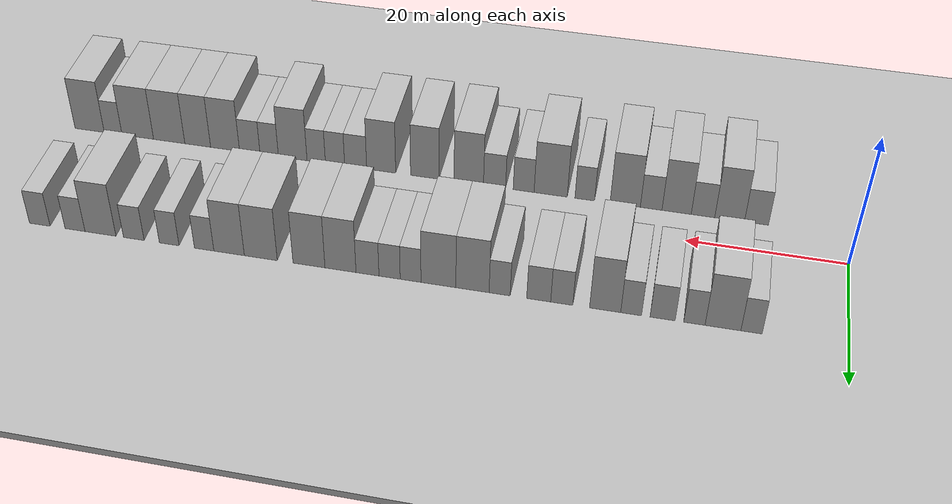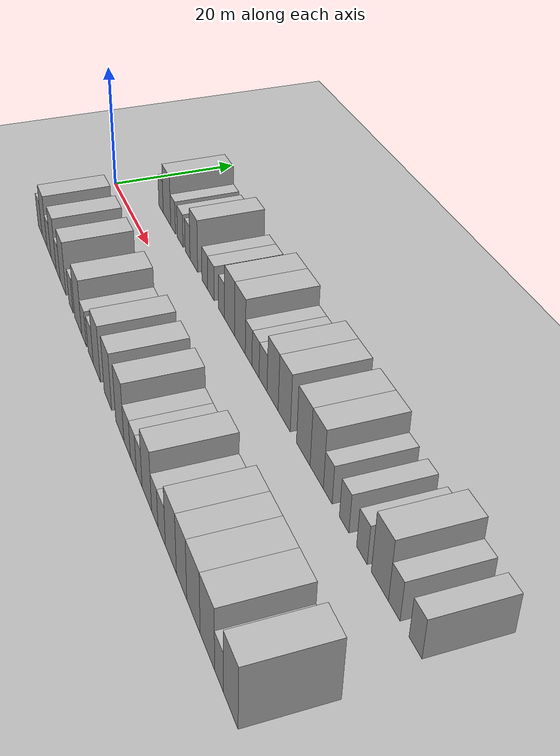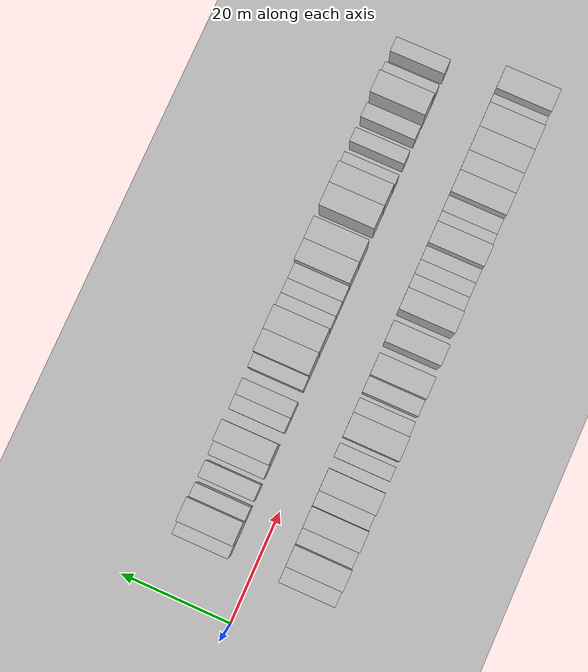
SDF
<sdf version="1.6">
 <world name="default">
  <include><name>ground_plane_1</name><uri>model://HANNAS_ground_plane</uri></include>
  <include>
   <name>ground_plane_2</name>
   <uri>model://HANNAS_ground_plane</uri>
   <pose>100 0 0  0 0 0</pose>
  </include>
  <model name="building_1">
   <static>1</static>
   <pose>11.2229 9.5000 0 0.000000 0.000000 1.570796</pose>
   <link name="link">
    <pose>0 0 3.00 0 0 0</pose>
    <collision name="collision"><geometry><box><size>10.0000 2.4459 6.0000</size></box></geometry></collision>
    <visual name="visual">
     <cast_shadows>0</cast_shadows>
     <geometry><box><size>10.0000 2.4459 6.0000</size></box></geometry>
     <material>
      <script>
       <uri>model://HANNAS_wall/materials/scripts</uri>
       <uri>model://HANNAS_wall/materials/textures</uri>
       <name>vrc/HANNAS_wall</name>
      </script>
     </material>
    </visual>
   </link>
  </model>
  <model name="building_2">
   <static>1</static>
   <pose>14.5242 9.5000 0 0.000000 0.000000 1.570796</pose>
   <link name="link">
    <pose>0 0 4.50 0 0 0</pose>
    <collision name="collision"><geometry><box><size>10.0000 4.1566 9.0000</size></box></geometry></collision>
    <visual name="visual">
     <cast_shadows>0</cast_shadows>
     <geometry><box><size>10.0000 4.1566 9.0000</size></box></geometry>
     <material>
      <script>
       <uri>model://HANNAS_wall/materials/scripts</uri>
       <uri>model://HANNAS_wall/materials/textures</uri>
       <name>vrc/HANNAS_wall</name>
      </script>
     </material>
    </visual>
   </link>
  </model>
  <model name="building_3">
   <static>1</static>
   <pose>17.8436 9.5000 0 0.000000 0.000000 1.570796</pose>
   <link name="link">
    <pose>0 0 3.00 0 0 0</pose>
    <collision name="collision"><geometry><box><size>10.0000 2.4823 6.0000</size></box></geometry></collision>
    <visual name="visual">
     <cast_shadows>0</cast_shadows>
     <geometry><box><size>10.0000 2.4823 6.0000</size></box></geometry>
     <material>
      <script>
       <uri>model://HANNAS_wall/materials/scripts</uri>
       <uri>model://HANNAS_wall/materials/textures</uri>
       <name>vrc/HANNAS_wall</name>
      </script>
     </material>
    </visual>
   </link>
  </model>
  <model name="building_4">
   <static>1</static>
   <pose>21.5612 9.5000 0 0.000000 0.000000 1.570796</pose>
   <link name="link">
    <pose>0 0 3.00 0 0 0</pose>
    <collision name="collision"><geometry><box><size>10.0000 2.9528 6.0000</size></box></geometry></collision>
    <visual name="visual">
     <cast_shadows>0</cast_shadows>
     <geometry><box><size>10.0000 2.9528 6.0000</size></box></geometry>
     <material>
      <script>
       <uri>model://HANNAS_wall/materials/scripts</uri>
       <uri>model://HANNAS_wall/materials/textures</uri>
       <name>vrc/HANNAS_wall</name>
      </script>
     </material>
    </visual>
   </link>
  </model>
  <model name="building_5">
   <static>1</static>
   <pose>25.2693 9.5000 0 0.000000 0.000000 1.570796</pose>
   <link name="link">
    <pose>0 0 3.00 0 0 0</pose>
    <collision name="collision"><geometry><box><size>10.0000 2.4633 6.0000</size></box></geometry></collision>
    <visual name="visual">
     <cast_shadows>0</cast_shadows>
     <geometry><box><size>10.0000 2.4633 6.0000</size></box></geometry>
     <material>
      <script>
       <uri>model://HANNAS_wall/materials/scripts</uri>
       <uri>model://HANNAS_wall/materials/textures</uri>
       <name>vrc/HANNAS_wall</name>
      </script>
     </material>
    </visual>
   </link>
  </model>
  <model name="building_6">
   <static>1</static>
   <pose>28.3528 9.5000 0 0.000000 0.000000 1.570796</pose>
   <link name="link">
    <pose>0 0 4.50 0 0 0</pose>
    <collision name="collision"><geometry><box><size>10.0000 3.7038 9.0000</size></box></geometry></collision>
    <visual name="visual">
     <cast_shadows>0</cast_shadows>
     <geometry><box><size>10.0000 3.7038 9.0000</size></box></geometry>
     <material>
      <script>
       <uri>model://HANNAS_wall/materials/scripts</uri>
       <uri>model://HANNAS_wall/materials/textures</uri>
       <name>vrc/HANNAS_wall</name>
      </script>
     </material>
    </visual>
   </link>
  </model>
  <model name="building_7">
   <static>1</static>
   <pose>33.5289 9.5000 0 0.000000 0.000000 1.570796</pose>
   <link name="link">
    <pose>0 0 3.00 0 0 0</pose>
    <collision name="collision"><geometry><box><size>10.0000 2.6482 6.0000</size></box></geometry></collision>
    <visual name="visual">
     <cast_shadows>0</cast_shadows>
     <geometry><box><size>10.0000 2.6482 6.0000</size></box></geometry>
     <material>
      <script>
       <uri>model://HANNAS_wall/materials/scripts</uri>
       <uri>model://HANNAS_wall/materials/textures</uri>
       <name>vrc/HANNAS_wall</name>
      </script>
     </material>
    </visual>
   </link>
  </model>
  <model name="building_8">
   <static>1</static>
   <pose>36.3014 9.5000 0 0.000000 0.000000 1.570796</pose>
   <link name="link">
    <pose>0 0 3.00 0 0 0</pose>
    <collision name="collision"><geometry><box><size>10.0000 2.8968 6.0000</size></box></geometry></collision>
    <visual name="visual">
     <cast_shadows>0</cast_shadows>
     <geometry><box><size>10.0000 2.8968 6.0000</size></box></geometry>
     <material>
      <script>
       <uri>model://HANNAS_wall/materials/scripts</uri>
       <uri>model://HANNAS_wall/materials/textures</uri>
       <name>vrc/HANNAS_wall</name>
      </script>
     </material>
    </visual>
   </link>
  </model>
  <model name="building_9">
   <static>1</static>
   <pose>41.0305 9.5000 0 0.000000 0.000000 1.570796</pose>
   <link name="link">
    <pose>0 0 3.00 0 0 0</pose>
    <collision name="collision"><geometry><box><size>10.0000 2.5614 6.0000</size></box></geometry></collision>
    <visual name="visual">
     <cast_shadows>0</cast_shadows>
     <geometry><box><size>10.0000 2.5614 6.0000</size></box></geometry>
     <material>
      <script>
       <uri>model://HANNAS_wall/materials/scripts</uri>
       <uri>model://HANNAS_wall/materials/textures</uri>
       <name>vrc/HANNAS_wall</name>
      </script>
     </material>
    </visual>
   </link>
  </model>
  <model name="building_10">
   <static>1</static>
   <pose>44.3482 9.5000 0 0.000000 0.000000 1.570796</pose>
   <link name="link">
    <pose>0 0 4.50 0 0 0</pose>
    <collision name="collision"><geometry><box><size>10.0000 4.0740 9.0000</size></box></geometry></collision>
    <visual name="visual">
     <cast_shadows>0</cast_shadows>
     <geometry><box><size>10.0000 4.0740 9.0000</size></box></geometry>
     <material>
      <script>
       <uri>model://HANNAS_wall/materials/scripts</uri>
       <uri>model://HANNAS_wall/materials/textures</uri>
       <name>vrc/HANNAS_wall</name>
      </script>
     </material>
    </visual>
   </link>
  </model>
  <model name="building_11">
   <static>1</static>
   <pose>48.5286 9.5000 0 0.000000 0.000000 1.570796</pose>
   <link name="link">
    <pose>0 0 4.50 0 0 0</pose>
    <collision name="collision"><geometry><box><size>10.0000 4.2870 9.0000</size></box></geometry></collision>
    <visual name="visual">
     <cast_shadows>0</cast_shadows>
     <geometry><box><size>10.0000 4.2870 9.0000</size></box></geometry>
     <material>
      <script>
       <uri>model://HANNAS_wall/materials/scripts</uri>
       <uri>model://HANNAS_wall/materials/textures</uri>
       <name>vrc/HANNAS_wall</name>
      </script>
     </material>
    </visual>
   </link>
  </model>
  <model name="building_12">
   <static>1</static>
   <pose>51.9586 9.5000 0 0.000000 0.000000 1.570796</pose>
   <link name="link">
    <pose>0 0 3.00 0 0 0</pose>
    <collision name="collision"><geometry><box><size>10.0000 2.5730 6.0000</size></box></geometry></collision>
    <visual name="visual">
     <cast_shadows>0</cast_shadows>
     <geometry><box><size>10.0000 2.5730 6.0000</size></box></geometry>
     <material>
      <script>
       <uri>model://HANNAS_wall/materials/scripts</uri>
       <uri>model://HANNAS_wall/materials/textures</uri>
       <name>vrc/HANNAS_wall</name>
      </script>
     </material>
    </visual>
   </link>
  </model>
  <model name="building_13">
   <static>1</static>
   <pose>54.5677 9.5000 0 0.000000 0.000000 1.570796</pose>
   <link name="link">
    <pose>0 0 3.00 0 0 0</pose>
    <collision name="collision"><geometry><box><size>10.0000 2.6450 6.0000</size></box></geometry></collision>
    <visual name="visual">
     <cast_shadows>0</cast_shadows>
     <geometry><box><size>10.0000 2.6450 6.0000</size></box></geometry>
     <material>
      <script>
       <uri>model://HANNAS_wall/materials/scripts</uri>
       <uri>model://HANNAS_wall/materials/textures</uri>
       <name>vrc/HANNAS_wall</name>
      </script>
     </material>
    </visual>
   </link>
  </model>
  <model name="building_14">
   <static>1</static>
   <pose>57.3248 9.5000 0 0.000000 0.000000 1.570796</pose>
   <link name="link">
    <pose>0 0 3.00 0 0 0</pose>
    <collision name="collision"><geometry><box><size>10.0000 2.8693 6.0000</size></box></geometry></collision>
    <visual name="visual">
     <cast_shadows>0</cast_shadows>
     <geometry><box><size>10.0000 2.8693 6.0000</size></box></geometry>
     <material>
      <script>
       <uri>model://HANNAS_wall/materials/scripts</uri>
       <uri>model://HANNAS_wall/materials/textures</uri>
       <name>vrc/HANNAS_wall</name>
      </script>
     </material>
    </visual>
   </link>
  </model>
  <model name="building_15">
   <static>1</static>
   <pose>60.7099 9.5000 0 0.000000 0.000000 1.570796</pose>
   <link name="link">
    <pose>0 0 4.50 0 0 0</pose>
    <collision name="collision"><geometry><box><size>10.0000 3.9008 9.0000</size></box></geometry></collision>
    <visual name="visual">
     <cast_shadows>0</cast_shadows>
     <geometry><box><size>10.0000 3.9008 9.0000</size></box></geometry>
     <material>
      <script>
       <uri>model://HANNAS_wall/materials/scripts</uri>
       <uri>model://HANNAS_wall/materials/textures</uri>
       <name>vrc/HANNAS_wall</name>
      </script>
     </material>
    </visual>
   </link>
  </model>
  <model name="building_16">
   <static>1</static>
   <pose>64.6893 9.5000 0 0.000000 0.000000 1.570796</pose>
   <link name="link">
    <pose>0 0 4.50 0 0 0</pose>
    <collision name="collision"><geometry><box><size>10.0000 4.0580 9.0000</size></box></geometry></collision>
    <visual name="visual">
     <cast_shadows>0</cast_shadows>
     <geometry><box><size>10.0000 4.0580 9.0000</size></box></geometry>
     <material>
      <script>
       <uri>model://HANNAS_wall/materials/scripts</uri>
       <uri>model://HANNAS_wall/materials/textures</uri>
       <name>vrc/HANNAS_wall</name>
      </script>
     </material>
    </visual>
   </link>
  </model>
  <model name="building_17">
   <static>1</static>
   <pose>70.8295 9.5000 0 0.000000 0.000000 1.570796</pose>
   <link name="link">
    <pose>0 0 4.50 0 0 0</pose>
    <collision name="collision"><geometry><box><size>10.0000 4.2225 9.0000</size></box></geometry></collision>
    <visual name="visual">
     <cast_shadows>0</cast_shadows>
     <geometry><box><size>10.0000 4.2225 9.0000</size></box></geometry>
     <material>
      <script>
       <uri>model://HANNAS_wall/materials/scripts</uri>
       <uri>model://HANNAS_wall/materials/textures</uri>
       <name>vrc/HANNAS_wall</name>
      </script>
     </material>
    </visual>
   </link>
  </model>
  <model name="building_18">
   <static>1</static>
   <pose>74.9079 9.5000 0 0.000000 0.000000 1.570796</pose>
   <link name="link">
    <pose>0 0 4.50 0 0 0</pose>
    <collision name="collision"><geometry><box><size>10.0000 3.9343 9.0000</size></box></geometry></collision>
    <visual name="visual">
     <cast_shadows>0</cast_shadows>
     <geometry><box><size>10.0000 3.9343 9.0000</size></box></geometry>
     <material>
      <script>
       <uri>model://HANNAS_wall/materials/scripts</uri>
       <uri>model://HANNAS_wall/materials/textures</uri>
       <name>vrc/HANNAS_wall</name>
      </script>
     </material>
    </visual>
   </link>
  </model>
  <model name="building_19">
   <static>1</static>
   <pose>78.1344 9.5000 0 0.000000 0.000000 1.570796</pose>
   <link name="link">
    <pose>0 0 3.00 0 0 0</pose>
    <collision name="collision"><geometry><box><size>10.0000 2.5186 6.0000</size></box></geometry></collision>
    <visual name="visual">
     <cast_shadows>0</cast_shadows>
     <geometry><box><size>10.0000 2.5186 6.0000</size></box></geometry>
     <material>
      <script>
       <uri>model://HANNAS_wall/materials/scripts</uri>
       <uri>model://HANNAS_wall/materials/textures</uri>
       <name>vrc/HANNAS_wall</name>
      </script>
     </material>
    </visual>
   </link>
  </model>
  <model name="building_20">
   <static>1</static>
   <pose>82.6851 9.5000 0 0.000000 0.000000 1.570796</pose>
   <link name="link">
    <pose>0 0 3.00 0 0 0</pose>
    <collision name="collision"><geometry><box><size>10.0000 2.5830 6.0000</size></box></geometry></collision>
    <visual name="visual">
     <cast_shadows>0</cast_shadows>
     <geometry><box><size>10.0000 2.5830 6.0000</size></box></geometry>
     <material>
      <script>
       <uri>model://HANNAS_wall/materials/scripts</uri>
       <uri>model://HANNAS_wall/materials/textures</uri>
       <name>vrc/HANNAS_wall</name>
      </script>
     </material>
    </visual>
   </link>
  </model>
  <model name="building_21">
   <static>1</static>
   <pose>87.3327 9.5000 0 0.000000 0.000000 1.570796</pose>
   <link name="link">
    <pose>0 0 3.00 0 0 0</pose>
    <collision name="collision"><geometry><box><size>10.0000 2.7122 6.0000</size></box></geometry></collision>
    <visual name="visual">
     <cast_shadows>0</cast_shadows>
     <geometry><box><size>10.0000 2.7122 6.0000</size></box></geometry>
     <material>
      <script>
       <uri>model://HANNAS_wall/materials/scripts</uri>
       <uri>model://HANNAS_wall/materials/textures</uri>
       <name>vrc/HANNAS_wall</name>
      </script>
     </material>
    </visual>
   </link>
  </model>
  <model name="building_22">
   <static>1</static>
   <pose>91.7432 9.5000 0 0.000000 0.000000 1.570796</pose>
   <link name="link">
    <pose>0 0 4.50 0 0 0</pose>
    <collision name="collision"><geometry><box><size>10.0000 4.1087 9.0000</size></box></geometry></collision>
    <visual name="visual">
     <cast_shadows>0</cast_shadows>
     <geometry><box><size>10.0000 4.1087 9.0000</size></box></geometry>
     <material>
      <script>
       <uri>model://HANNAS_wall/materials/scripts</uri>
       <uri>model://HANNAS_wall/materials/textures</uri>
       <name>vrc/HANNAS_wall</name>
      </script>
     </material>
    </visual>
   </link>
  </model>
  <model name="building_23">
   <static>1</static>
   <pose>95.1326 9.5000 0 0.000000 0.000000 1.570796</pose>
   <link name="link">
    <pose>0 0 3.00 0 0 0</pose>
    <collision name="collision"><geometry><box><size>10.0000 2.6700 6.0000</size></box></geometry></collision>
    <visual name="visual">
     <cast_shadows>0</cast_shadows>
     <geometry><box><size>10.0000 2.6700 6.0000</size></box></geometry>
     <material>
      <script>
       <uri>model://HANNAS_wall/materials/scripts</uri>
       <uri>model://HANNAS_wall/materials/textures</uri>
       <name>vrc/HANNAS_wall</name>
      </script>
     </material>
    </visual>
   </link>
  </model>
  <model name="building_24">
   <static>1</static>
   <pose>99.8553 9.5000 0 0.000000 0.000000 1.570796</pose>
   <link name="link">
    <pose>0 0 3.00 0 0 0</pose>
    <collision name="collision"><geometry><box><size>10.0000 2.7754 6.0000</size></box></geometry></collision>
    <visual name="visual">
     <cast_shadows>0</cast_shadows>
     <geometry><box><size>10.0000 2.7754 6.0000</size></box></geometry>
     <material>
      <script>
       <uri>model://HANNAS_wall/materials/scripts</uri>
       <uri>model://HANNAS_wall/materials/textures</uri>
       <name>vrc/HANNAS_wall</name>
      </script>
     </material>
    </visual>
   </link>
  </model>
  <model name="building_48">
   <static>1</static>
   <pose>11.4990 -9.5000 0 0.000000 0.000000 1.570796</pose>
   <link name="link">
    <pose>0 0 3.00 0 0 0</pose>
    <collision name="collision"><geometry><box><size>10.0000 2.9980 6.0000</size></box></geometry></collision>
    <visual name="visual">
     <cast_shadows>0</cast_shadows>
     <geometry><box><size>10.0000 2.9980 6.0000</size></box></geometry>
     <material>
      <script>
       <uri>model://HANNAS_wall/materials/scripts</uri>
       <uri>model://HANNAS_wall/materials/textures</uri>
       <name>vrc/HANNAS_wall</name>
      </script>
     </material>
    </visual>
   </link>
  </model>
  <model name="building_49">
   <static>1</static>
   <pose>14.8594 -9.5000 0 0.000000 0.000000 1.570796</pose>
   <link name="link">
    <pose>0 0 4.50 0 0 0</pose>
    <collision name="collision"><geometry><box><size>10.0000 3.7228 9.0000</size></box></geometry></collision>
    <visual name="visual">
     <cast_shadows>0</cast_shadows>
     <geometry><box><size>10.0000 3.7228 9.0000</size></box></geometry>
     <material>
      <script>
       <uri>model://HANNAS_wall/materials/scripts</uri>
       <uri>model://HANNAS_wall/materials/textures</uri>
       <name>vrc/HANNAS_wall</name>
      </script>
     </material>
    </visual>
   </link>
  </model>
  <model name="building_50">
   <static>1</static>
   <pose>18.2043 -9.5000 0 0.000000 0.000000 1.570796</pose>
   <link name="link">
    <pose>0 0 3.00 0 0 0</pose>
    <collision name="collision"><geometry><box><size>10.0000 2.9669 6.0000</size></box></geometry></collision>
    <visual name="visual">
     <cast_shadows>0</cast_shadows>
     <geometry><box><size>10.0000 2.9669 6.0000</size></box></geometry>
     <material>
      <script>
       <uri>model://HANNAS_wall/materials/scripts</uri>
       <uri>model://HANNAS_wall/materials/textures</uri>
       <name>vrc/HANNAS_wall</name>
      </script>
     </material>
    </visual>
   </link>
  </model>
  <model name="building_51">
   <static>1</static>
   <pose>21.5410 -9.5000 0 0.000000 0.000000 1.570796</pose>
   <link name="link">
    <pose>0 0 4.50 0 0 0</pose>
    <collision name="collision"><geometry><box><size>10.0000 3.7065 9.0000</size></box></geometry></collision>
    <visual name="visual">
     <cast_shadows>0</cast_shadows>
     <geometry><box><size>10.0000 3.7065 9.0000</size></box></geometry>
     <material>
      <script>
       <uri>model://HANNAS_wall/materials/scripts</uri>
       <uri>model://HANNAS_wall/materials/textures</uri>
       <name>vrc/HANNAS_wall</name>
      </script>
     </material>
    </visual>
   </link>
  </model>
  <model name="building_52">
   <static>1</static>
   <pose>24.7736 -9.5000 0 0.000000 0.000000 1.570796</pose>
   <link name="link">
    <pose>0 0 3.00 0 0 0</pose>
    <collision name="collision"><geometry><box><size>10.0000 2.7588 6.0000</size></box></geometry></collision>
    <visual name="visual">
     <cast_shadows>0</cast_shadows>
     <geometry><box><size>10.0000 2.7588 6.0000</size></box></geometry>
     <material>
      <script>
       <uri>model://HANNAS_wall/materials/scripts</uri>
       <uri>model://HANNAS_wall/materials/textures</uri>
       <name>vrc/HANNAS_wall</name>
      </script>
     </material>
    </visual>
   </link>
  </model>
  <model name="building_53">
   <static>1</static>
   <pose>28.0901 -9.5000 0 0.000000 0.000000 1.570796</pose>
   <link name="link">
    <pose>0 0 4.50 0 0 0</pose>
    <collision name="collision"><geometry><box><size>10.0000 3.8741 9.0000</size></box></geometry></collision>
    <visual name="visual">
     <cast_shadows>0</cast_shadows>
     <geometry><box><size>10.0000 3.8741 9.0000</size></box></geometry>
     <material>
      <script>
       <uri>model://HANNAS_wall/materials/scripts</uri>
       <uri>model://HANNAS_wall/materials/textures</uri>
       <name>vrc/HANNAS_wall</name>
      </script>
     </material>
    </visual>
   </link>
  </model>
  <model name="building_54">
   <static>1</static>
   <pose>33.2941 -9.5000 0 0.000000 0.000000 1.570796</pose>
   <link name="link">
    <pose>0 0 3.00 0 0 0</pose>
    <collision name="collision"><geometry><box><size>10.0000 2.5338 6.0000</size></box></geometry></collision>
    <visual name="visual">
     <cast_shadows>0</cast_shadows>
     <geometry><box><size>10.0000 2.5338 6.0000</size></box></geometry>
     <material>
      <script>
       <uri>model://HANNAS_wall/materials/scripts</uri>
       <uri>model://HANNAS_wall/materials/textures</uri>
       <name>vrc/HANNAS_wall</name>
      </script>
     </material>
    </visual>
   </link>
  </model>
  <model name="building_55">
   <static>1</static>
   <pose>37.7197 -9.5000 0 0.000000 0.000000 1.570796</pose>
   <link name="link">
    <pose>0 0 4.50 0 0 0</pose>
    <collision name="collision"><geometry><box><size>10.0000 4.3174 9.0000</size></box></geometry></collision>
    <visual name="visual">
     <cast_shadows>0</cast_shadows>
     <geometry><box><size>10.0000 4.3174 9.0000</size></box></geometry>
     <material>
      <script>
       <uri>model://HANNAS_wall/materials/scripts</uri>
       <uri>model://HANNAS_wall/materials/textures</uri>
       <name>vrc/HANNAS_wall</name>
      </script>
     </material>
    </visual>
   </link>
  </model>
  <model name="building_56">
   <static>1</static>
   <pose>41.2449 -9.5000 0 0.000000 0.000000 1.570796</pose>
   <link name="link">
    <pose>0 0 3.00 0 0 0</pose>
    <collision name="collision"><geometry><box><size>10.0000 2.7329 6.0000</size></box></geometry></collision>
    <visual name="visual">
     <cast_shadows>0</cast_shadows>
     <geometry><box><size>10.0000 2.7329 6.0000</size></box></geometry>
     <material>
      <script>
       <uri>model://HANNAS_wall/materials/scripts</uri>
       <uri>model://HANNAS_wall/materials/textures</uri>
       <name>vrc/HANNAS_wall</name>
      </script>
     </material>
    </visual>
   </link>
  </model>
  <model name="building_57">
   <static>1</static>
   <pose>45.0677 -9.5000 0 0.000000 0.000000 1.570796</pose>
   <link name="link">
    <pose>0 0 3.00 0 0 0</pose>
    <collision name="collision"><geometry><box><size>10.0000 2.9128 6.0000</size></box></geometry></collision>
    <visual name="visual">
     <cast_shadows>0</cast_shadows>
     <geometry><box><size>10.0000 2.9128 6.0000</size></box></geometry>
     <material>
      <script>
       <uri>model://HANNAS_wall/materials/scripts</uri>
       <uri>model://HANNAS_wall/materials/textures</uri>
       <name>vrc/HANNAS_wall</name>
      </script>
     </material>
    </visual>
   </link>
  </model>
  <model name="building_58">
   <static>1</static>
   <pose>48.4810 -9.5000 0 0.000000 0.000000 1.570796</pose>
   <link name="link">
    <pose>0 0 4.50 0 0 0</pose>
    <collision name="collision"><geometry><box><size>10.0000 3.9139 9.0000</size></box></geometry></collision>
    <visual name="visual">
     <cast_shadows>0</cast_shadows>
     <geometry><box><size>10.0000 3.9139 9.0000</size></box></geometry>
     <material>
      <script>
       <uri>model://HANNAS_wall/materials/scripts</uri>
       <uri>model://HANNAS_wall/materials/textures</uri>
       <name>vrc/HANNAS_wall</name>
      </script>
     </material>
    </visual>
   </link>
  </model>
  <model name="building_59">
   <static>1</static>
   <pose>54.3344 -9.5000 0 0.000000 0.000000 1.570796</pose>
   <link name="link">
    <pose>0 0 4.50 0 0 0</pose>
    <collision name="collision"><geometry><box><size>10.0000 3.7929 9.0000</size></box></geometry></collision>
    <visual name="visual">
     <cast_shadows>0</cast_shadows>
     <geometry><box><size>10.0000 3.7929 9.0000</size></box></geometry>
     <material>
      <script>
       <uri>model://HANNAS_wall/materials/scripts</uri>
       <uri>model://HANNAS_wall/materials/textures</uri>
       <name>vrc/HANNAS_wall</name>
      </script>
     </material>
    </visual>
   </link>
  </model>
  <model name="building_60">
   <static>1</static>
   <pose>60.1904 -9.5000 0 0.000000 0.000000 1.570796</pose>
   <link name="link">
    <pose>0 0 4.50 0 0 0</pose>
    <collision name="collision"><geometry><box><size>10.0000 3.9190 9.0000</size></box></geometry></collision>
    <visual name="visual">
     <cast_shadows>0</cast_shadows>
     <geometry><box><size>10.0000 3.9190 9.0000</size></box></geometry>
     <material>
      <script>
       <uri>model://HANNAS_wall/materials/scripts</uri>
       <uri>model://HANNAS_wall/materials/textures</uri>
       <name>vrc/HANNAS_wall</name>
      </script>
     </material>
    </visual>
   </link>
  </model>
  <model name="building_61">
   <static>1</static>
   <pose>63.6444 -9.5000 0 0.000000 0.000000 1.570796</pose>
   <link name="link">
    <pose>0 0 3.00 0 0 0</pose>
    <collision name="collision"><geometry><box><size>10.0000 2.9891 6.0000</size></box></geometry></collision>
    <visual name="visual">
     <cast_shadows>0</cast_shadows>
     <geometry><box><size>10.0000 2.9891 6.0000</size></box></geometry>
     <material>
      <script>
       <uri>model://HANNAS_wall/materials/scripts</uri>
       <uri>model://HANNAS_wall/materials/textures</uri>
       <name>vrc/HANNAS_wall</name>
      </script>
     </material>
    </visual>
   </link>
  </model>
  <model name="building_62">
   <static>1</static>
   <pose>66.4522 -9.5000 0 0.000000 0.000000 1.570796</pose>
   <link name="link">
    <pose>0 0 3.00 0 0 0</pose>
    <collision name="collision"><geometry><box><size>10.0000 2.6264 6.0000</size></box></geometry></collision>
    <visual name="visual">
     <cast_shadows>0</cast_shadows>
     <geometry><box><size>10.0000 2.6264 6.0000</size></box></geometry>
     <material>
      <script>
       <uri>model://HANNAS_wall/materials/scripts</uri>
       <uri>model://HANNAS_wall/materials/textures</uri>
       <name>vrc/HANNAS_wall</name>
      </script>
     </material>
    </visual>
   </link>
  </model>
  <model name="building_63">
   <static>1</static>
   <pose>69.0239 -9.5000 0 0.000000 0.000000 1.570796</pose>
   <link name="link">
    <pose>0 0 3.00 0 0 0</pose>
    <collision name="collision"><geometry><box><size>10.0000 2.5169 6.0000</size></box></geometry></collision>
    <visual name="visual">
     <cast_shadows>0</cast_shadows>
     <geometry><box><size>10.0000 2.5169 6.0000</size></box></geometry>
     <material>
      <script>
       <uri>model://HANNAS_wall/materials/scripts</uri>
       <uri>model://HANNAS_wall/materials/textures</uri>
       <name>vrc/HANNAS_wall</name>
      </script>
     </material>
    </visual>
   </link>
  </model>
  <model name="building_64">
   <static>1</static>
   <pose>72.2554 -9.5000 0 0.000000 0.000000 1.570796</pose>
   <link name="link">
    <pose>0 0 4.50 0 0 0</pose>
    <collision name="collision"><geometry><box><size>10.0000 3.9462 9.0000</size></box></geometry></collision>
    <visual name="visual">
     <cast_shadows>0</cast_shadows>
     <geometry><box><size>10.0000 3.9462 9.0000</size></box></geometry>
     <material>
      <script>
       <uri>model://HANNAS_wall/materials/scripts</uri>
       <uri>model://HANNAS_wall/materials/textures</uri>
       <name>vrc/HANNAS_wall</name>
      </script>
     </material>
    </visual>
   </link>
  </model>
  <model name="building_65">
   <static>1</static>
   <pose>75.4976 -9.5000 0 0.000000 0.000000 1.570796</pose>
   <link name="link">
    <pose>0 0 3.00 0 0 0</pose>
    <collision name="collision"><geometry><box><size>10.0000 2.5381 6.0000</size></box></geometry></collision>
    <visual name="visual">
     <cast_shadows>0</cast_shadows>
     <geometry><box><size>10.0000 2.5381 6.0000</size></box></geometry>
     <material>
      <script>
       <uri>model://HANNAS_wall/materials/scripts</uri>
       <uri>model://HANNAS_wall/materials/textures</uri>
       <name>vrc/HANNAS_wall</name>
      </script>
     </material>
    </visual>
   </link>
  </model>
  <model name="building_66">
   <static>1</static>
   <pose>78.1930 -9.5000 0 0.000000 0.000000 1.570796</pose>
   <link name="link">
    <pose>0 0 3.00 0 0 0</pose>
    <collision name="collision"><geometry><box><size>10.0000 2.8527 6.0000</size></box></geometry></collision>
    <visual name="visual">
     <cast_shadows>0</cast_shadows>
     <geometry><box><size>10.0000 2.8527 6.0000</size></box></geometry>
     <material>
      <script>
       <uri>model://HANNAS_wall/materials/scripts</uri>
       <uri>model://HANNAS_wall/materials/textures</uri>
       <name>vrc/HANNAS_wall</name>
      </script>
     </material>
    </visual>
   </link>
  </model>
  <model name="building_67">
   <static>1</static>
   <pose>81.6437 -9.5000 0 0.000000 0.000000 1.570796</pose>
   <link name="link">
    <pose>0 0 4.50 0 0 0</pose>
    <collision name="collision"><geometry><box><size>10.0000 4.0486 9.0000</size></box></geometry></collision>
    <visual name="visual">
     <cast_shadows>0</cast_shadows>
     <geometry><box><size>10.0000 4.0486 9.0000</size></box></geometry>
     <material>
      <script>
       <uri>model://HANNAS_wall/materials/scripts</uri>
       <uri>model://HANNAS_wall/materials/textures</uri>
       <name>vrc/HANNAS_wall</name>
      </script>
     </material>
    </visual>
   </link>
  </model>
  <model name="building_68">
   <static>1</static>
   <pose>85.4848 -9.5000 0 0.000000 0.000000 1.570796</pose>
   <link name="link">
    <pose>0 0 4.50 0 0 0</pose>
    <collision name="collision"><geometry><box><size>10.0000 3.6337 9.0000</size></box></geometry></collision>
    <visual name="visual">
     <cast_shadows>0</cast_shadows>
     <geometry><box><size>10.0000 3.6337 9.0000</size></box></geometry>
     <material>
      <script>
       <uri>model://HANNAS_wall/materials/scripts</uri>
       <uri>model://HANNAS_wall/materials/textures</uri>
       <name>vrc/HANNAS_wall</name>
      </script>
     </material>
    </visual>
   </link>
  </model>
  <model name="building_69">
   <static>1</static>
   <pose>89.5160 -9.5000 0 0.000000 0.000000 1.570796</pose>
   <link name="link">
    <pose>0 0 4.50 0 0 0</pose>
    <collision name="collision"><geometry><box><size>10.0000 4.4285 9.0000</size></box></geometry></collision>
    <visual name="visual">
     <cast_shadows>0</cast_shadows>
     <geometry><box><size>10.0000 4.4285 9.0000</size></box></geometry>
     <material>
      <script>
       <uri>model://HANNAS_wall/materials/scripts</uri>
       <uri>model://HANNAS_wall/materials/textures</uri>
       <name>vrc/HANNAS_wall</name>
      </script>
     </material>
    </visual>
   </link>
  </model>
  <model name="building_70">
   <static>1</static>
   <pose>93.9801 -9.5000 0 0.000000 0.000000 1.570796</pose>
   <link name="link">
    <pose>0 0 4.50 0 0 0</pose>
    <collision name="collision"><geometry><box><size>10.0000 4.4997 9.0000</size></box></geometry></collision>
    <visual name="visual">
     <cast_shadows>0</cast_shadows>
     <geometry><box><size>10.0000 4.4997 9.0000</size></box></geometry>
     <material>
      <script>
       <uri>model://HANNAS_wall/materials/scripts</uri>
       <uri>model://HANNAS_wall/materials/textures</uri>
       <name>vrc/HANNAS_wall</name>
      </script>
     </material>
    </visual>
   </link>
  </model>
  <model name="building_71">
   <static>1</static>
   <pose>97.5045 -9.5000 0 0.000000 0.000000 1.570796</pose>
   <link name="link">
    <pose>0 0 3.00 0 0 0</pose>
    <collision name="collision"><geometry><box><size>10.0000 2.5492 6.0000</size></box></geometry></collision>
    <visual name="visual">
     <cast_shadows>0</cast_shadows>
     <geometry><box><size>10.0000 2.5492 6.0000</size></box></geometry>
     <material>
      <script>
       <uri>model://HANNAS_wall/materials/scripts</uri>
       <uri>model://HANNAS_wall/materials/textures</uri>
       <name>vrc/HANNAS_wall</name>
      </script>
     </material>
    </visual>
   </link>
  </model>
  <model name="building_72">
   <static>1</static>
   <pose>100.8826 -9.5000 0 0.000000 0.000000 1.570796</pose>
   <link name="link">
    <pose>0 0 4.50 0 0 0</pose>
    <collision name="collision"><geometry><box><size>10.0000 4.2069 9.0000</size></box></geometry></collision>
    <visual name="visual">
     <cast_shadows>0</cast_shadows>
     <geometry><box><size>10.0000 4.2069 9.0000</size></box></geometry>
     <material>
      <script>
       <uri>model://HANNAS_wall/materials/scripts</uri>
       <uri>model://HANNAS_wall/materials/textures</uri>
       <name>vrc/HANNAS_wall</name>
      </script>
     </material>
    </visual>
   </link>
  </model>
 </world>
</sdf>
